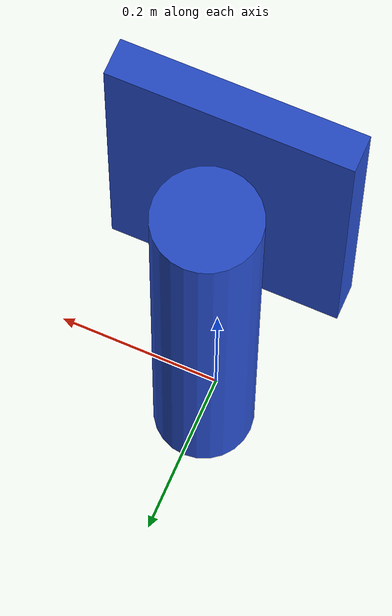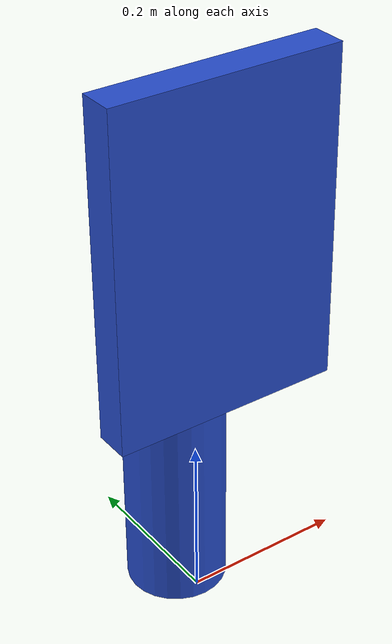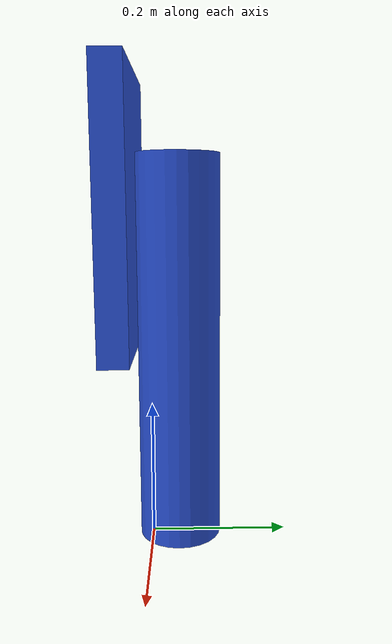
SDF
<?xml version='1.0'?>
<sdf version='1.6'>
  <model name='cone'>
    <link name='link_0'>
      <pose frame=''>-0.001828 0.040408 0.282607 0 -0 0</pose>
      <inertial>
        <mass>0.008164</mass>
        <inertia>
          <ixx>0.00022572</ixx>
          <ixy>0</ixy>
          <ixz>0</ixz>
          <iyy>0.00022572</iyy>
          <iyz>0</iyz>
          <izz>1.471e-05</izz>
        </inertia>
        <pose frame=''>0 0 0 0 -0 0</pose>
      </inertial>
      <gravity>1</gravity>
      <self_collide>0</self_collide>
      <kinematic>0</kinematic>
      <visual name='visual'>
        <pose frame=''>0 0 0 0 -0 0</pose>
        <geometry>
          <cylinder>
            <radius>0.0600261</radius>
            <length>0.56653</length>
          </cylinder>
        </geometry>
        <material>
          <lighting>1</lighting>
          <script>
            <uri>file://media/materials/scripts/gazebo.material</uri>
            <name>Gazebo/Blue</name>
          </script>
          <ambient>0 0 1 0</ambient>
          <diffuse>0 0 1 0</diffuse>
          <specular>0.1 0.1 0.1 1</specular>
          <emissive>0 0 0 1</emissive>
          <shader type='vertex'>
            <normal_map>__default__</normal_map>
          </shader>
        </material>
        <cast_shadows>1</cast_shadows>
        <transparency>0</transparency>
      </visual>
      <collision name='collision'>
        <laser_retro>0</laser_retro>
        <max_contacts>10</max_contacts>
        <pose frame=''>0 0 0 0 -0 0</pose>
        <geometry>
          <cylinder>
            <radius>0.060026</radius>
            <length>0.56653</length>
          </cylinder>
        </geometry>
        <surface>
          <friction>
            <ode>
              <mu>1</mu>
              <mu2>1</mu2>
              <fdir1>0 0 0</fdir1>
              <slip1>0</slip1>
              <slip2>0</slip2>
            </ode>
            <torsional>
              <coefficient>1</coefficient>
              <patch_radius>0</patch_radius>
              <surface_radius>0</surface_radius>
              <use_patch_radius>1</use_patch_radius>
              <ode>
                <slip>0</slip>
              </ode>
            </torsional>
          </friction>
          <bounce>
            <restitution_coefficient>0</restitution_coefficient>
            <threshold>1e+06</threshold>
          </bounce>
          <contact>
            <collide_without_contact>0</collide_without_contact>
            <collide_without_contact_bitmask>1</collide_without_contact_bitmask>
            <collide_bitmask>1</collide_bitmask>
            <ode>
              <soft_cfm>0</soft_cfm>
              <soft_erp>0.2</soft_erp>
              <kp>1e+13</kp>
              <kd>1</kd>
              <max_vel>0.01</max_vel>
              <min_depth>0</min_depth>
            </ode>
            <bullet>
              <split_impulse>1</split_impulse>
              <split_impulse_penetration_threshold>-0.01</split_impulse_penetration_threshold>
              <soft_cfm>0</soft_cfm>
              <soft_erp>0.2</soft_erp>
              <kp>1e+13</kp>
              <kd>1</kd>
            </bullet>
          </contact>
        </surface>
      </collision>
    </link>
    <link name='link_1'>
      <pose frame=''>0.00183 -0.040408 0.482607 0 -0 0</pose>
      <inertial>
        <mass>0.00437531</mass>
        <inertia>
          <ixx>5.55732e-05</ixx>
          <ixy>0</ixy>
          <ixz>0</ixz>
          <iyy>8.174e-05</iyy>
          <iyz>0</iyz>
          <izz>2.74273e-05</izz>
        </inertia>
        <pose frame=''>0 0 0 0 -0 0</pose>
      </inertial>
      <visual name='visual'>
        <pose frame=''>0 0 0 0 -0 0</pose>
        <geometry>
          <box>
            <size>0.271115 0.041579 0.388153</size>
          </box>
        </geometry>
        <material>
          <lighting>1</lighting>
          <script>
            <uri>file://media/materials/scripts/gazebo.material</uri>
            <name>Gazebo/Blue</name>
          </script>
          <ambient>0 0 1 0</ambient>
          <diffuse>0 0 1 0</diffuse>
          <specular>0.1 0.1 0.1 1</specular>
          <emissive>0 0 0 1</emissive>
        </material>
        <cast_shadows>1</cast_shadows>
        <transparency>0</transparency>
      </visual>
      <collision name='collision'>
        <laser_retro>0</laser_retro>
        <max_contacts>10</max_contacts>
        <pose frame=''>0 0 0 0 -0 0</pose>
        <geometry>
          <box>
            <size>0.271115 0.041579 0.388153</size>
          </box>
        </geometry>
        <surface>
          <friction>
            <ode>
              <mu>1</mu>
              <mu2>1</mu2>
              <fdir1>0 0 0</fdir1>
              <slip1>0</slip1>
              <slip2>0</slip2>
            </ode>
            <torsional>
              <coefficient>1</coefficient>
              <patch_radius>0</patch_radius>
              <surface_radius>0</surface_radius>
              <use_patch_radius>1</use_patch_radius>
              <ode>
                <slip>0</slip>
              </ode>
            </torsional>
          </friction>
          <bounce>
            <restitution_coefficient>0</restitution_coefficient>
            <threshold>1e+06</threshold>
          </bounce>
          <contact>
            <collide_without_contact>0</collide_without_contact>
            <collide_without_contact_bitmask>1</collide_without_contact_bitmask>
            <collide_bitmask>1</collide_bitmask>
            <ode>
              <soft_cfm>0</soft_cfm>
              <soft_erp>0.2</soft_erp>
              <kp>1e+13</kp>
              <kd>1</kd>
              <max_vel>0.01</max_vel>
              <min_depth>0</min_depth>
            </ode>
            <bullet>
              <split_impulse>1</split_impulse>
              <split_impulse_penetration_threshold>-0.01</split_impulse_penetration_threshold>
              <soft_cfm>0</soft_cfm>
              <soft_erp>0.2</soft_erp>
              <kp>1e+13</kp>
              <kd>1</kd>
            </bullet>
          </contact>
        </surface>
      </collision>
    </link>
    <joint name='link_1_JOINT_0' type='fixed'>
      <parent>link_1</parent>
      <child>link_0</child>
      <pose frame=''>0 0 0 0 -0 0</pose>
      <physics>
        <ode>
          <limit>
            <cfm>0</cfm>
            <erp>0.2</erp>
          </limit>
          <suspension>
            <cfm>0</cfm>
            <erp>0.2</erp>
          </suspension>
        </ode>
      </physics>
    </joint>
    <static>1</static>
    <allow_auto_disable>0</allow_auto_disable>
  </model>
</sdf>
